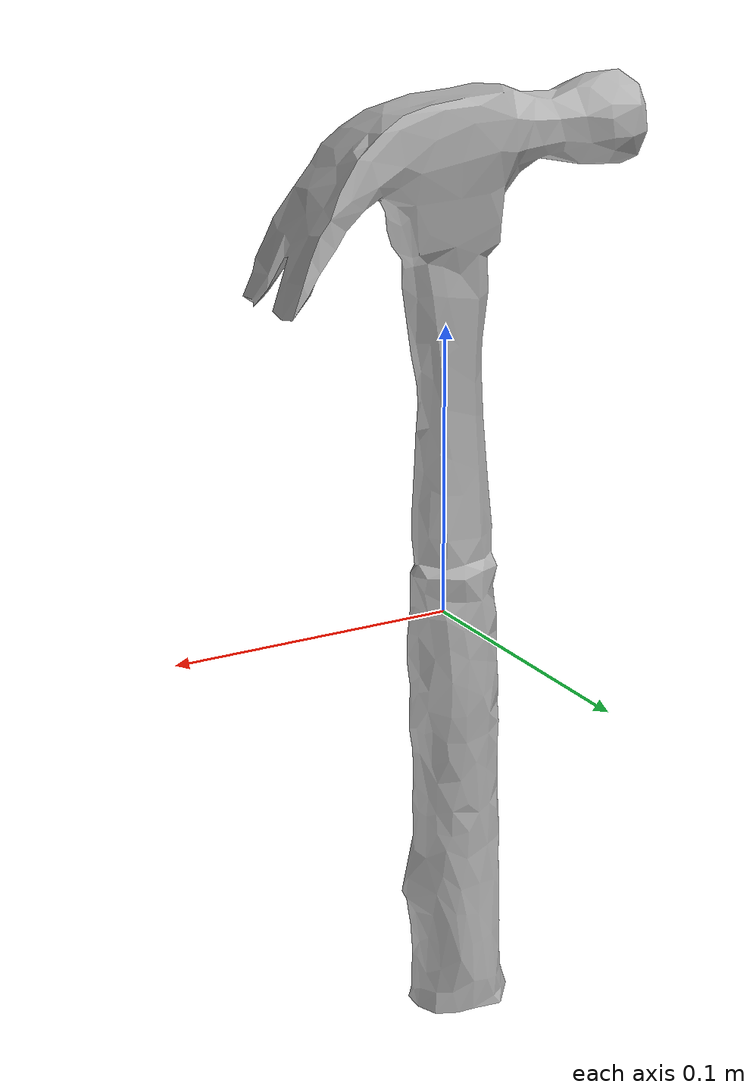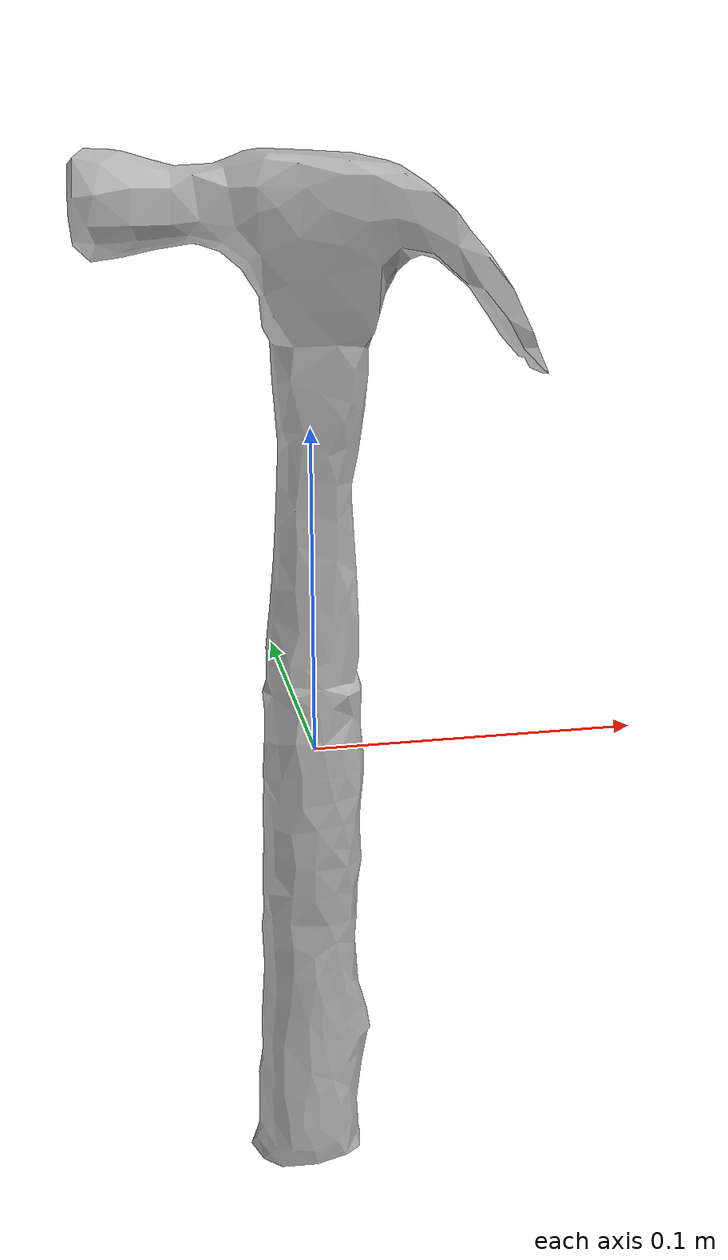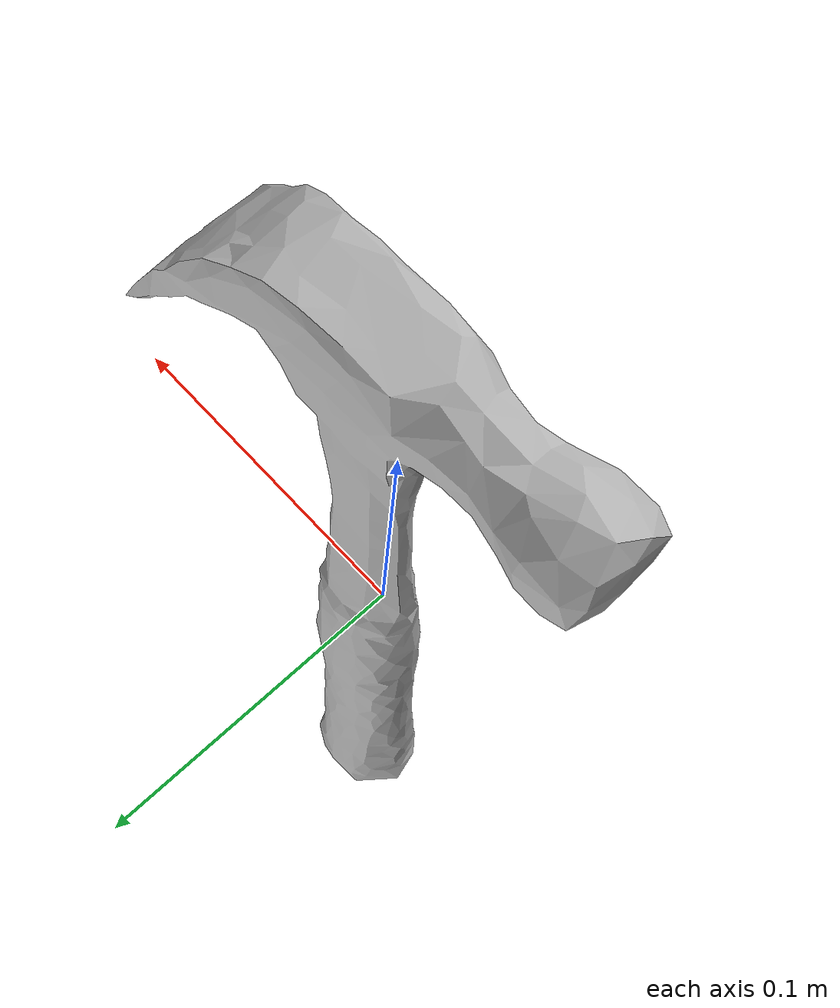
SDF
<?xml version="1.0" ?>
<sdf version="1.4">
  <model name="old_hammer">
    <pose>0 0 0.017  0 0 0</pose>
    <static>false</static>
    <link name="body">
      <inertial>
        <pose>-0.000918 0.005468 0.027093 0 0 0</pose>
        <mass>1.2</mass>
        <inertia>
          <ixx>2.70381e-3</ixx>
          <ixy>0.0e-3</ixy>
          <ixz>0.0e-3</ixz>
          <iyy>2.79994e-3</iyy>
          <iyz>0.0e-3</iyz>
          <izz>0.11579e-3</izz>
        </inertia>
      </inertial>
      <visual name="visual">
        <cast_shadows>true</cast_shadows>
        <geometry>
         <mesh>
           <uri>package://costar_objects/sdf/old_hammer/meshes/old_hammer.obj</uri>
         </mesh>
        </geometry>
      </visual>
      <collision name="collision">
        <surface>
          <friction>
            <ode>
              <mu>0.3</mu>
              <mu2>0.3</mu2>
            </ode>
          </friction>
        </surface>
        <geometry>
         <mesh>
           <uri>package://costar_objects/sdf/old_hammer/meshes/old_hammer.stl</uri>
         </mesh>
        </geometry>
      </collision>
    </link>
  </model>
</sdf>
